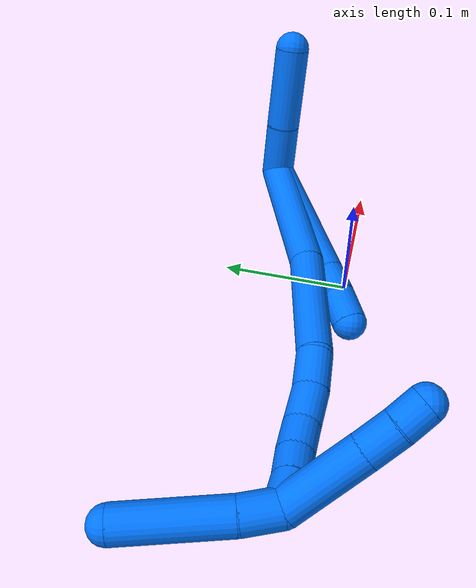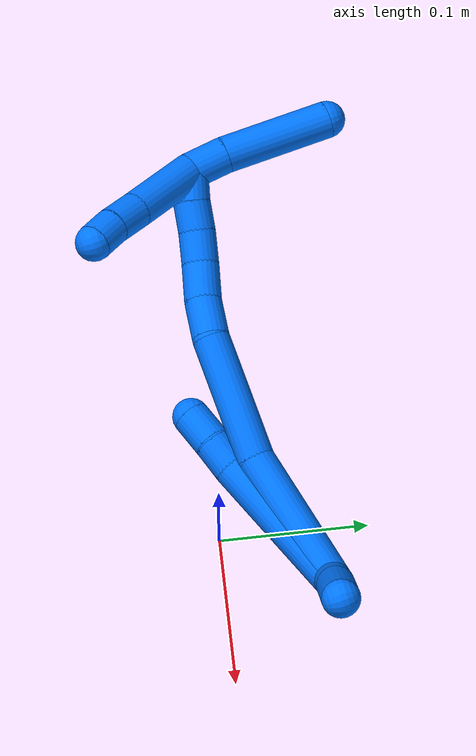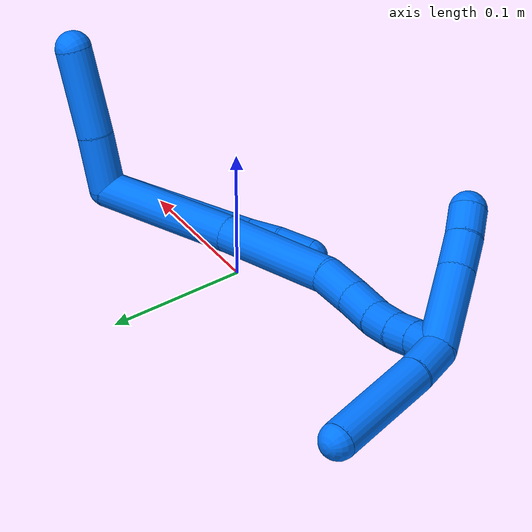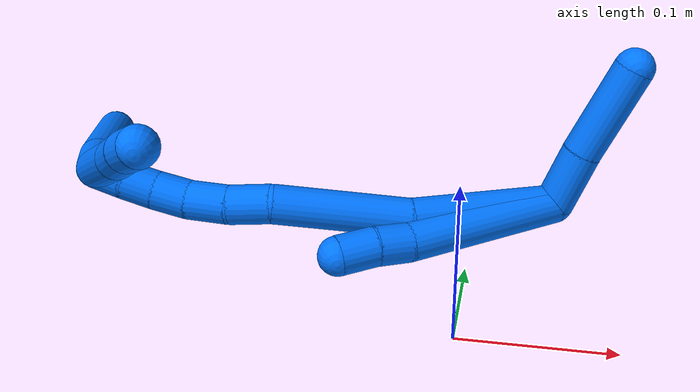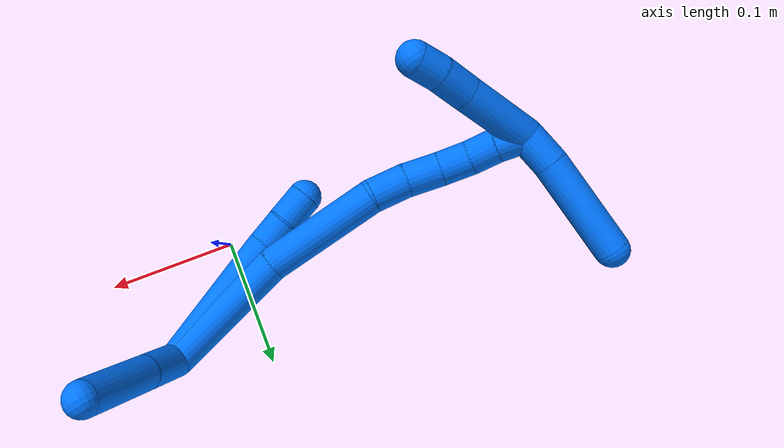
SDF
<sdf version="1.7">
 <world name="default">
  <model name="14">
   <static>0</static>
   <link name="14">
    <collision name="collision-cylinder-e_1_2_8">
     <pose>-0.043097 0.0216 -0.019209 -2.29769 -0.980002 1.74237</pose>
     <geometry><cylinder><radius>0.0125</radius><length>0.103786</length></cylinder></geometry>
     <surface>
      <friction><ode><mu>1.16</mu><mu2>1.16</mu2><slip1>0</slip1><slip2>0</slip2></ode></friction>
      <contact><ode><kp>1e+06</kp><kd>1</kd><max_vel>0</max_vel><min_depth>0.001</min_depth></ode></contact>
     </surface>
    </collision>
    <visual name="visual-cylinder-e_1_2_8">
     <pose>-0.043097 0.0216 -0.019209 -2.29769 -0.980002 1.74237</pose>
     <geometry><cylinder><radius>0.0125</radius><length>0.103786</length></cylinder></geometry>
     <material><ambient>0 0.462745 1 1</ambient></material>
    </visual>
    <collision name="collision-cylinder-e_2_8_9">
     <pose>-0.096045 0.046702 -0.041905 -2.35373 -1.10577 1.95604</pose>
     <geometry><cylinder><radius>0.0125</radius><length>0.022041</length></cylinder></geometry>
     <surface>
      <friction><ode><mu>1.16</mu><mu2>1.16</mu2><slip1>0</slip1><slip2>0</slip2></ode></friction>
      <contact><ode><kp>1e+06</kp><kd>1</kd><max_vel>0</max_vel><min_depth>0.001</min_depth></ode></contact>
     </surface>
    </collision>
    <visual name="visual-cylinder-e_2_8_9">
     <pose>-0.096045 0.046702 -0.041905 -2.35373 -1.10577 1.95604</pose>
     <geometry><cylinder><radius>0.0125</radius><length>0.022041</length></cylinder></geometry>
     <material><ambient>0 0.462745 1 1</ambient></material>
    </visual>
    <collision name="collision-cylinder-e_3_9_6">
     <pose>-0.116033 0.055432 -0.049389 -2.22387 -0.995002 1.66528</pose>
     <geometry><cylinder><radius>0.0125</radius><length>0.024172</length></cylinder></geometry>
     <surface>
      <friction><ode><mu>1.16</mu><mu2>1.16</mu2><slip1>0</slip1><slip2>0</slip2></ode></friction>
      <contact><ode><kp>1e+06</kp><kd>1</kd><max_vel>0</max_vel><min_depth>0.001</min_depth></ode></contact>
     </surface>
    </collision>
    <visual name="visual-cylinder-e_3_9_6">
     <pose>-0.116033 0.055432 -0.049389 -2.22387 -0.995002 1.66528</pose>
     <geometry><cylinder><radius>0.0125</radius><length>0.024172</length></cylinder></geometry>
     <material><ambient>0 0.462745 1 1</ambient></material>
    </visual>
    <collision name="collision-cylinder-e_1_2_10">
     <pose>-0.000617 -0.019637 -5e-05 1.57333 -0.031421 -0.0315</pose>
     <geometry><cylinder><radius>0.0125</radius><length>0.039293</length></cylinder></geometry>
     <surface>
      <friction><ode><mu>1.16</mu><mu2>1.16</mu2><slip1>0</slip1><slip2>0</slip2></ode></friction>
      <contact><ode><kp>1e+06</kp><kd>1</kd><max_vel>0</max_vel><min_depth>0.001</min_depth></ode></contact>
     </surface>
    </collision>
    <visual name="visual-cylinder-e_1_2_10">
     <pose>-0.000617 -0.019637 -5e-05 1.57333 -0.031421 -0.0315</pose>
     <geometry><cylinder><radius>0.0125</radius><length>0.039293</length></cylinder></geometry>
     <material><ambient>0 0.462745 1 1</ambient></material>
    </visual>
    <collision name="collision-cylinder-e_2_10_5">
     <pose>-0.000346 -0.069611 -0.000537 1.58524 0.029288 0.029714</pose>
     <geometry><cylinder><radius>0.0125</radius><length>0.060707</length></cylinder></geometry>
     <surface>
      <friction><ode><mu>1.16</mu><mu2>1.16</mu2><slip1>0</slip1><slip2>0</slip2></ode></friction>
      <contact><ode><kp>1e+06</kp><kd>1</kd><max_vel>0</max_vel><min_depth>0.001</min_depth></ode></contact>
     </surface>
    </collision>
    <visual name="visual-cylinder-e_2_10_5">
     <pose>-0.000346 -0.069611 -0.000537 1.58524 0.029288 0.029714</pose>
     <geometry><cylinder><radius>0.0125</radius><length>0.060707</length></cylinder></geometry>
     <material><ambient>0 0.462745 1 1</ambient></material>
    </visual>
    <collision name="collision-cylinder-e_1_2_11">
     <pose>-0.043761 0.017412 -0.011 -2.13423 -1.13091 1.71139</pose>
     <geometry><cylinder><radius>0.0125</radius><length>0.09673</length></cylinder></geometry>
     <surface>
      <friction><ode><mu>1.16</mu><mu2>1.16</mu2><slip1>0</slip1><slip2>0</slip2></ode></friction>
      <contact><ode><kp>1e+06</kp><kd>1</kd><max_vel>0</max_vel><min_depth>0.001</min_depth></ode></contact>
     </surface>
    </collision>
    <visual name="visual-cylinder-e_1_2_11">
     <pose>-0.043761 0.017412 -0.011 -2.13423 -1.13091 1.71139</pose>
     <geometry><cylinder><radius>0.0125</radius><length>0.09673</length></cylinder></geometry>
     <material><ambient>0 0.462745 1 1</ambient></material>
    </visual>
    <collision name="collision-cylinder-e_2_11_12">
     <pose>-0.129425 0.046235 -0.023208 -1.67629 -1.3035 1.40669</pose>
     <geometry><cylinder><radius>0.0125</radius><length>0.086893</length></cylinder></geometry>
     <surface>
      <friction><ode><mu>1.16</mu><mu2>1.16</mu2><slip1>0</slip1><slip2>0</slip2></ode></friction>
      <contact><ode><kp>1e+06</kp><kd>1</kd><max_vel>0</max_vel><min_depth>0.001</min_depth></ode></contact>
     </surface>
    </collision>
    <visual name="visual-cylinder-e_2_11_12">
     <pose>-0.129425 0.046235 -0.023208 -1.67629 -1.3035 1.40669</pose>
     <geometry><cylinder><radius>0.0125</radius><length>0.086893</length></cylinder></geometry>
     <material><ambient>0 0.462745 1 1</ambient></material>
    </visual>
    <collision name="collision-cylinder-e_3_12_13">
     <pose>-0.183276 0.063776 -0.02295 -1.33596 -1.08537 0.888231</pose>
     <geometry><cylinder><radius>0.0125</radius><length>0.027014</length></cylinder></geometry>
     <surface>
      <friction><ode><mu>1.16</mu><mu2>1.16</mu2><slip1>0</slip1><slip2>0</slip2></ode></friction>
      <contact><ode><kp>1e+06</kp><kd>1</kd><max_vel>0</max_vel><min_depth>0.001</min_depth></ode></contact>
     </surface>
    </collision>
    <visual name="visual-cylinder-e_3_12_13">
     <pose>-0.183276 0.063776 -0.02295 -1.33596 -1.08537 0.888231</pose>
     <geometry><cylinder><radius>0.0125</radius><length>0.027014</length></cylinder></geometry>
     <material><ambient>0 0.462745 1 1</ambient></material>
    </visual>
    <collision name="collision-cylinder-e_4_13_14">
     <pose>-0.207036 0.074605 -0.018362 -0.984511 -1.12526 0.652236</pose>
     <geometry><cylinder><radius>0.0125</radius><length>0.026185</length></cylinder></geometry>
     <surface>
      <friction><ode><mu>1.16</mu><mu2>1.16</mu2><slip1>0</slip1><slip2>0</slip2></ode></friction>
      <contact><ode><kp>1e+06</kp><kd>1</kd><max_vel>0</max_vel><min_depth>0.001</min_depth></ode></contact>
     </surface>
    </collision>
    <visual name="visual-cylinder-e_4_13_14">
     <pose>-0.207036 0.074605 -0.018362 -0.984511 -1.12526 0.652236</pose>
     <geometry><cylinder><radius>0.0125</radius><length>0.026185</length></cylinder></geometry>
     <material><ambient>0 0.462745 1 1</ambient></material>
    </visual>
    <collision name="collision-cylinder-e_5_14_15">
     <pose>-0.229575 0.081476 -0.012772 -0.721203 -1.27337 0.543832</pose>
     <geometry><cylinder><radius>0.0125</radius><length>0.022434</length></cylinder></geometry>
     <surface>
      <friction><ode><mu>1.16</mu><mu2>1.16</mu2><slip1>0</slip1><slip2>0</slip2></ode></friction>
      <contact><ode><kp>1e+06</kp><kd>1</kd><max_vel>0</max_vel><min_depth>0.001</min_depth></ode></contact>
     </surface>
    </collision>
    <visual name="visual-cylinder-e_5_14_15">
     <pose>-0.229575 0.081476 -0.012772 -0.721203 -1.27337 0.543832</pose>
     <geometry><cylinder><radius>0.0125</radius><length>0.022434</length></cylinder></geometry>
     <material><ambient>0 0.462745 1 1</ambient></material>
    </visual>
    <collision name="collision-cylinder-e_6_15_16">
     <pose>-0.250297 0.084627 -0.00878 -0.572085 -1.3916 0.481706</pose>
     <geometry><cylinder><radius>0.0125</radius><length>0.02032</length></cylinder></geometry>
     <surface>
      <friction><ode><mu>1.16</mu><mu2>1.16</mu2><slip1>0</slip1><slip2>0</slip2></ode></friction>
      <contact><ode><kp>1e+06</kp><kd>1</kd><max_vel>0</max_vel><min_depth>0.001</min_depth></ode></contact>
     </surface>
    </collision>
    <visual name="visual-cylinder-e_6_15_16">
     <pose>-0.250297 0.084627 -0.00878 -0.572085 -1.3916 0.481706</pose>
     <geometry><cylinder><radius>0.0125</radius><length>0.02032</length></cylinder></geometry>
     <material><ambient>0 0.462745 1 1</ambient></material>
    </visual>
    <collision name="collision-cylinder-e_7_16_1">
     <pose>-0.270091 0.086831 -0.004649 -0.438601 -1.28472 0.330492</pose>
     <geometry><cylinder><radius>0.0125</radius><length>0.020424</length></cylinder></geometry>
     <surface>
      <friction><ode><mu>1.16</mu><mu2>1.16</mu2><slip1>0</slip1><slip2>0</slip2></ode></friction>
      <contact><ode><kp>1e+06</kp><kd>1</kd><max_vel>0</max_vel><min_depth>0.001</min_depth></ode></contact>
     </surface>
    </collision>
    <visual name="visual-cylinder-e_7_16_1">
     <pose>-0.270091 0.086831 -0.004649 -0.438601 -1.28472 0.330492</pose>
     <geometry><cylinder><radius>0.0125</radius><length>0.020424</length></cylinder></geometry>
     <material><ambient>0 0.462745 1 1</ambient></material>
    </visual>
    <collision name="collision-cylinder-e_1_1_17">
     <pose>-0.273585 0.071187 -0.023411 2.47343 0.227517 0.635993</pose>
     <geometry><cylinder><radius>0.0125</radius><length>0.055892</length></cylinder></geometry>
     <surface>
      <friction><ode><mu>1.16</mu><mu2>1.16</mu2><slip1>0</slip1><slip2>0</slip2></ode></friction>
      <contact><ode><kp>1e+06</kp><kd>1</kd><max_vel>0</max_vel><min_depth>0.001</min_depth></ode></contact>
     </surface>
    </collision>
    <visual name="visual-cylinder-e_1_1_17">
     <pose>-0.273585 0.071187 -0.023411 2.47343 0.227517 0.635993</pose>
     <geometry><cylinder><radius>0.0125</radius><length>0.055892</length></cylinder></geometry>
     <material><ambient>0 0.462745 1 1</ambient></material>
    </visual>
    <collision name="collision-cylinder-e_2_17_18">
     <pose>-0.264874 0.046625 -0.053658 2.4274 0.20212 0.530775</pose>
     <geometry><cylinder><radius>0.0125</radius><length>0.023983</length></cylinder></geometry>
     <surface>
      <friction><ode><mu>1.16</mu><mu2>1.16</mu2><slip1>0</slip1><slip2>0</slip2></ode></friction>
      <contact><ode><kp>1e+06</kp><kd>1</kd><max_vel>0</max_vel><min_depth>0.001</min_depth></ode></contact>
     </surface>
    </collision>
    <visual name="visual-cylinder-e_2_17_18">
     <pose>-0.264874 0.046625 -0.053658 2.4274 0.20212 0.530775</pose>
     <geometry><cylinder><radius>0.0125</radius><length>0.023983</length></cylinder></geometry>
     <material><ambient>0 0.462745 1 1</ambient></material>
    </visual>
    <collision name="collision-cylinder-e_3_18_4">
     <pose>-0.259465 0.032629 -0.069784 2.426 0.302936 0.775188</pose>
     <geometry><cylinder><radius>0.0125</radius><length>0.020126</length></cylinder></geometry>
     <surface>
      <friction><ode><mu>1.16</mu><mu2>1.16</mu2><slip1>0</slip1><slip2>0</slip2></ode></friction>
      <contact><ode><kp>1e+06</kp><kd>1</kd><max_vel>0</max_vel><min_depth>0.001</min_depth></ode></contact>
     </surface>
    </collision>
    <visual name="visual-cylinder-e_3_18_4">
     <pose>-0.259465 0.032629 -0.069784 2.426 0.302936 0.775188</pose>
     <geometry><cylinder><radius>0.0125</radius><length>0.020126</length></cylinder></geometry>
     <material><ambient>0 0.462745 1 1</ambient></material>
    </visual>
    <collision name="collision-cylinder-e_1_1_19">
     <pose>-0.281412 0.090433 0.010793 -0.183257 -0.116193 0.010688</pose>
     <geometry><cylinder><radius>0.0125</radius><length>0.02628</length></cylinder></geometry>
     <surface>
      <friction><ode><mu>1.16</mu><mu2>1.16</mu2><slip1>0</slip1><slip2>0</slip2></ode></friction>
      <contact><ode><kp>1e+06</kp><kd>1</kd><max_vel>0</max_vel><min_depth>0.001</min_depth></ode></contact>
     </surface>
    </collision>
    <visual name="visual-cylinder-e_1_1_19">
     <pose>-0.281412 0.090433 0.010793 -0.183257 -0.116193 0.010688</pose>
     <geometry><cylinder><radius>0.0125</radius><length>0.02628</length></cylinder></geometry>
     <material><ambient>0 0.462745 1 1</ambient></material>
    </visual>
    <collision name="collision-cylinder-e_2_19_3">
     <pose>-0.283271 0.098456 0.060049 -0.153761 -0.009123 0.000703</pose>
     <geometry><cylinder><radius>0.0125</radius><length>0.07372</length></cylinder></geometry>
     <surface>
      <friction><ode><mu>1.16</mu><mu2>1.16</mu2><slip1>0</slip1><slip2>0</slip2></ode></friction>
      <contact><ode><kp>1e+06</kp><kd>1</kd><max_vel>0</max_vel><min_depth>0.001</min_depth></ode></contact>
     </surface>
    </collision>
    <visual name="visual-cylinder-e_2_19_3">
     <pose>-0.283271 0.098456 0.060049 -0.153761 -0.009123 0.000703</pose>
     <geometry><cylinder><radius>0.0125</radius><length>0.07372</length></cylinder></geometry>
     <material><ambient>0 0.462745 1 1</ambient></material>
    </visual>
    <collision name="collision-sphere-3">
     <pose>-0.283608 0.104101 0.096473 0 -0 0</pose>
     <geometry><sphere><radius>0.0125</radius></sphere></geometry>
     <surface>
      <friction><ode><mu>1.16</mu><mu2>1.16</mu2><slip1>0</slip1><slip2>0</slip2></ode></friction>
      <contact><ode><kp>1e+06</kp><kd>1</kd><max_vel>0</max_vel><min_depth>0.001</min_depth></ode></contact>
     </surface>
    </collision>
    <visual name="visual-sphere-3">
     <pose>-0.283608 0.104101 0.096473 0 -0 0</pose>
     <geometry><sphere><radius>0.0125</radius></sphere></geometry>
     <material><ambient>0 0.462745 1 1</ambient></material>
    </visual>
    <collision name="collision-sphere-19">
     <pose>-0.282935 0.092811 0.023626 0 -0 0</pose>
     <geometry><sphere><radius>0.0125</radius></sphere></geometry>
     <surface>
      <friction><ode><mu>1.16</mu><mu2>1.16</mu2><slip1>0</slip1><slip2>0</slip2></ode></friction>
      <contact><ode><kp>1e+06</kp><kd>1</kd><max_vel>0</max_vel><min_depth>0.001</min_depth></ode></contact>
     </surface>
    </collision>
    <visual name="visual-sphere-19">
     <pose>-0.282935 0.092811 0.023626 0 -0 0</pose>
     <geometry><sphere><radius>0.0125</radius></sphere></geometry>
     <material><ambient>0 0.462745 1 1</ambient></material>
    </visual>
    <collision name="collision-sphere-5">
     <pose>0.000543 -0.099948 -0.000976 0 -0 0</pose>
     <geometry><sphere><radius>0.0125</radius></sphere></geometry>
     <surface>
      <friction><ode><mu>1.16</mu><mu2>1.16</mu2><slip1>0</slip1><slip2>0</slip2></ode></friction>
      <contact><ode><kp>1e+06</kp><kd>1</kd><max_vel>0</max_vel><min_depth>0.001</min_depth></ode></contact>
     </surface>
    </collision>
    <visual name="visual-sphere-5">
     <pose>0.000543 -0.099948 -0.000976 0 -0 0</pose>
     <geometry><sphere><radius>0.0125</radius></sphere></geometry>
     <material><ambient>0 0.462745 1 1</ambient></material>
    </visual>
    <collision name="collision-sphere-10">
     <pose>-0.001234 -0.039273 -9.9e-05 0 -0 0</pose>
     <geometry><sphere><radius>0.0125</radius></sphere></geometry>
     <surface>
      <friction><ode><mu>1.16</mu><mu2>1.16</mu2><slip1>0</slip1><slip2>0</slip2></ode></friction>
      <contact><ode><kp>1e+06</kp><kd>1</kd><max_vel>0</max_vel><min_depth>0.001</min_depth></ode></contact>
     </surface>
    </collision>
    <visual name="visual-sphere-10">
     <pose>-0.001234 -0.039273 -9.9e-05 0 -0 0</pose>
     <geometry><sphere><radius>0.0125</radius></sphere></geometry>
     <material><ambient>0 0.462745 1 1</ambient></material>
    </visual>
    <collision name="collision-sphere-6">
     <pose>-0.12617 0.060659 -0.053388 0 -0 0</pose>
     <geometry><sphere><radius>0.0125</radius></sphere></geometry>
     <surface>
      <friction><ode><mu>1.16</mu><mu2>1.16</mu2><slip1>0</slip1><slip2>0</slip2></ode></friction>
      <contact><ode><kp>1e+06</kp><kd>1</kd><max_vel>0</max_vel><min_depth>0.001</min_depth></ode></contact>
     </surface>
    </collision>
    <visual name="visual-sphere-6">
     <pose>-0.12617 0.060659 -0.053388 0 -0 0</pose>
     <geometry><sphere><radius>0.0125</radius></sphere></geometry>
     <material><ambient>0 0.462745 1 1</ambient></material>
    </visual>
    <collision name="collision-sphere-9">
     <pose>-0.105895 0.050205 -0.045391 0 -0 0</pose>
     <geometry><sphere><radius>0.0125</radius></sphere></geometry>
     <surface>
      <friction><ode><mu>1.16</mu><mu2>1.16</mu2><slip1>0</slip1><slip2>0</slip2></ode></friction>
      <contact><ode><kp>1e+06</kp><kd>1</kd><max_vel>0</max_vel><min_depth>0.001</min_depth></ode></contact>
     </surface>
    </collision>
    <visual name="visual-sphere-9">
     <pose>-0.105895 0.050205 -0.045391 0 -0 0</pose>
     <geometry><sphere><radius>0.0125</radius></sphere></geometry>
     <material><ambient>0 0.462745 1 1</ambient></material>
    </visual>
    <collision name="collision-sphere-2">
     <geometry><sphere><radius>0.0125</radius></sphere></geometry>
     <surface>
      <friction><ode><mu>1.16</mu><mu2>1.16</mu2><slip1>0</slip1><slip2>0</slip2></ode></friction>
      <contact><ode><kp>1e+06</kp><kd>1</kd><max_vel>0</max_vel><min_depth>0.001</min_depth></ode></contact>
     </surface>
    </collision>
    <visual name="visual-sphere-2">
     <geometry><sphere><radius>0.0125</radius></sphere></geometry>
     <material><ambient>0 0.462745 1 1</ambient></material>
    </visual>
    <collision name="collision-sphere-8">
     <pose>-0.086195 0.043199 -0.038419 0 -0 0</pose>
     <geometry><sphere><radius>0.0125</radius></sphere></geometry>
     <surface>
      <friction><ode><mu>1.16</mu><mu2>1.16</mu2><slip1>0</slip1><slip2>0</slip2></ode></friction>
      <contact><ode><kp>1e+06</kp><kd>1</kd><max_vel>0</max_vel><min_depth>0.001</min_depth></ode></contact>
     </surface>
    </collision>
    <visual name="visual-sphere-8">
     <pose>-0.086195 0.043199 -0.038419 0 -0 0</pose>
     <geometry><sphere><radius>0.0125</radius></sphere></geometry>
     <material><ambient>0 0.462745 1 1</ambient></material>
    </visual>
    <collision name="collision-sphere-11">
     <pose>-0.087521 0.034824 -0.022 0 -0 0</pose>
     <geometry><sphere><radius>0.0125</radius></sphere></geometry>
     <surface>
      <friction><ode><mu>1.16</mu><mu2>1.16</mu2><slip1>0</slip1><slip2>0</slip2></ode></friction>
      <contact><ode><kp>1e+06</kp><kd>1</kd><max_vel>0</max_vel><min_depth>0.001</min_depth></ode></contact>
     </surface>
    </collision>
    <visual name="visual-sphere-11">
     <pose>-0.087521 0.034824 -0.022 0 -0 0</pose>
     <geometry><sphere><radius>0.0125</radius></sphere></geometry>
     <material><ambient>0 0.462745 1 1</ambient></material>
    </visual>
    <collision name="collision-sphere-12">
     <pose>-0.171329 0.057647 -0.024416 0 -0 0</pose>
     <geometry><sphere><radius>0.0125</radius></sphere></geometry>
     <surface>
      <friction><ode><mu>1.16</mu><mu2>1.16</mu2><slip1>0</slip1><slip2>0</slip2></ode></friction>
      <contact><ode><kp>1e+06</kp><kd>1</kd><max_vel>0</max_vel><min_depth>0.001</min_depth></ode></contact>
     </surface>
    </collision>
    <visual name="visual-sphere-12">
     <pose>-0.171329 0.057647 -0.024416 0 -0 0</pose>
     <geometry><sphere><radius>0.0125</radius></sphere></geometry>
     <material><ambient>0 0.462745 1 1</ambient></material>
    </visual>
    <collision name="collision-sphere-13">
     <pose>-0.195222 0.069905 -0.021484 0 -0 0</pose>
     <geometry><sphere><radius>0.0125</radius></sphere></geometry>
     <surface>
      <friction><ode><mu>1.16</mu><mu2>1.16</mu2><slip1>0</slip1><slip2>0</slip2></ode></friction>
      <contact><ode><kp>1e+06</kp><kd>1</kd><max_vel>0</max_vel><min_depth>0.001</min_depth></ode></contact>
     </surface>
    </collision>
    <visual name="visual-sphere-13">
     <pose>-0.195222 0.069905 -0.021484 0 -0 0</pose>
     <geometry><sphere><radius>0.0125</radius></sphere></geometry>
     <material><ambient>0 0.462745 1 1</ambient></material>
    </visual>
    <collision name="collision-sphere-14">
     <pose>-0.218851 0.079305 -0.01524 0 -0 0</pose>
     <geometry><sphere><radius>0.0125</radius></sphere></geometry>
     <surface>
      <friction><ode><mu>1.16</mu><mu2>1.16</mu2><slip1>0</slip1><slip2>0</slip2></ode></friction>
      <contact><ode><kp>1e+06</kp><kd>1</kd><max_vel>0</max_vel><min_depth>0.001</min_depth></ode></contact>
     </surface>
    </collision>
    <visual name="visual-sphere-14">
     <pose>-0.218851 0.079305 -0.01524 0 -0 0</pose>
     <geometry><sphere><radius>0.0125</radius></sphere></geometry>
     <material><ambient>0 0.462745 1 1</ambient></material>
    </visual>
    <collision name="collision-sphere-15">
     <pose>-0.2403 0.083646 -0.010303 0 -0 0</pose>
     <geometry><sphere><radius>0.0125</radius></sphere></geometry>
     <surface>
      <friction><ode><mu>1.16</mu><mu2>1.16</mu2><slip1>0</slip1><slip2>0</slip2></ode></friction>
      <contact><ode><kp>1e+06</kp><kd>1</kd><max_vel>0</max_vel><min_depth>0.001</min_depth></ode></contact>
     </surface>
    </collision>
    <visual name="visual-sphere-15">
     <pose>-0.2403 0.083646 -0.010303 0 -0 0</pose>
     <geometry><sphere><radius>0.0125</radius></sphere></geometry>
     <material><ambient>0 0.462745 1 1</ambient></material>
    </visual>
    <collision name="collision-sphere-16">
     <pose>-0.260294 0.085607 -0.007258 0 -0 0</pose>
     <geometry><sphere><radius>0.0125</radius></sphere></geometry>
     <surface>
      <friction><ode><mu>1.16</mu><mu2>1.16</mu2><slip1>0</slip1><slip2>0</slip2></ode></friction>
      <contact><ode><kp>1e+06</kp><kd>1</kd><max_vel>0</max_vel><min_depth>0.001</min_depth></ode></contact>
     </surface>
    </collision>
    <visual name="visual-sphere-16">
     <pose>-0.260294 0.085607 -0.007258 0 -0 0</pose>
     <geometry><sphere><radius>0.0125</radius></sphere></geometry>
     <material><ambient>0 0.462745 1 1</ambient></material>
    </visual>
    <collision name="collision-sphere-1">
     <pose>-0.279888 0.088054 -0.00204 0 -0 0</pose>
     <geometry><sphere><radius>0.0125</radius></sphere></geometry>
     <surface>
      <friction><ode><mu>1.16</mu><mu2>1.16</mu2><slip1>0</slip1><slip2>0</slip2></ode></friction>
      <contact><ode><kp>1e+06</kp><kd>1</kd><max_vel>0</max_vel><min_depth>0.001</min_depth></ode></contact>
     </surface>
    </collision>
    <visual name="visual-sphere-1">
     <pose>-0.279888 0.088054 -0.00204 0 -0 0</pose>
     <geometry><sphere><radius>0.0125</radius></sphere></geometry>
     <material><ambient>0 0.462745 1 1</ambient></material>
    </visual>
    <collision name="collision-sphere-18">
     <pose>-0.262467 0.03893 -0.062535 0 -0 0</pose>
     <geometry><sphere><radius>0.0125</radius></sphere></geometry>
     <surface>
      <friction><ode><mu>1.16</mu><mu2>1.16</mu2><slip1>0</slip1><slip2>0</slip2></ode></friction>
      <contact><ode><kp>1e+06</kp><kd>1</kd><max_vel>0</max_vel><min_depth>0.001</min_depth></ode></contact>
     </surface>
    </collision>
    <visual name="visual-sphere-18">
     <pose>-0.262467 0.03893 -0.062535 0 -0 0</pose>
     <geometry><sphere><radius>0.0125</radius></sphere></geometry>
     <material><ambient>0 0.462745 1 1</ambient></material>
    </visual>
    <collision name="collision-sphere-17">
     <pose>-0.267282 0.054319 -0.044782 0 -0 0</pose>
     <geometry><sphere><radius>0.0125</radius></sphere></geometry>
     <surface>
      <friction><ode><mu>1.16</mu><mu2>1.16</mu2><slip1>0</slip1><slip2>0</slip2></ode></friction>
      <contact><ode><kp>1e+06</kp><kd>1</kd><max_vel>0</max_vel><min_depth>0.001</min_depth></ode></contact>
     </surface>
    </collision>
    <visual name="visual-sphere-17">
     <pose>-0.267282 0.054319 -0.044782 0 -0 0</pose>
     <geometry><sphere><radius>0.0125</radius></sphere></geometry>
     <material><ambient>0 0.462745 1 1</ambient></material>
    </visual>
    <collision name="collision-sphere-4">
     <pose>-0.256463 0.026328 -0.077032 0 -0 0</pose>
     <geometry><sphere><radius>0.0125</radius></sphere></geometry>
     <surface>
      <friction><ode><mu>1.16</mu><mu2>1.16</mu2><slip1>0</slip1><slip2>0</slip2></ode></friction>
      <contact><ode><kp>1e+06</kp><kd>1</kd><max_vel>0</max_vel><min_depth>0.001</min_depth></ode></contact>
     </surface>
    </collision>
    <visual name="visual-sphere-4">
     <pose>-0.256463 0.026328 -0.077032 0 -0 0</pose>
     <geometry><sphere><radius>0.0125</radius></sphere></geometry>
     <material><ambient>0 0.462745 1 1</ambient></material>
    </visual>
    <inertial>
     <pose>-0.141583 0.039601 -0.010902 0 -0 0</pose>
     <mass>0.75</mass>
     <inertia>
      <ixx>0.000161</ixx>
      <ixy>0</ixy>
      <ixz>0</ixz>
      <iyy>0.000348</iyy>
      <iyz>0</iyz>
      <izz>0.00016</izz>
     </inertia>
    </inertial>
   </link>
   <pose>0.05611 0.068396 0.067288 -1.46652 0.392689 0.242855</pose>
  </model>
 </world>
</sdf>
